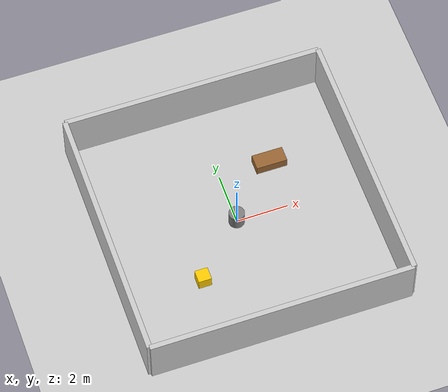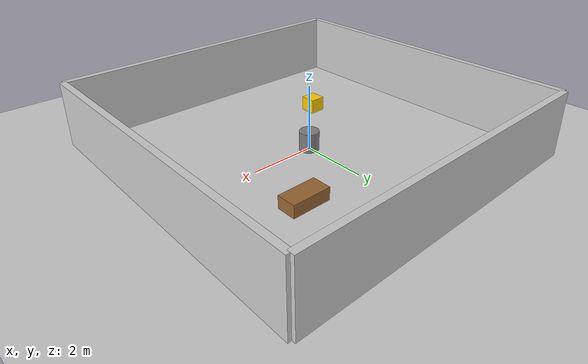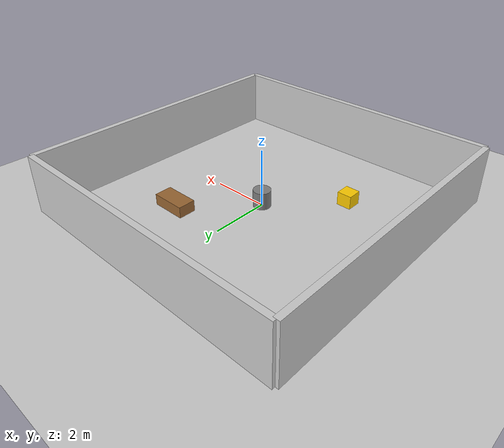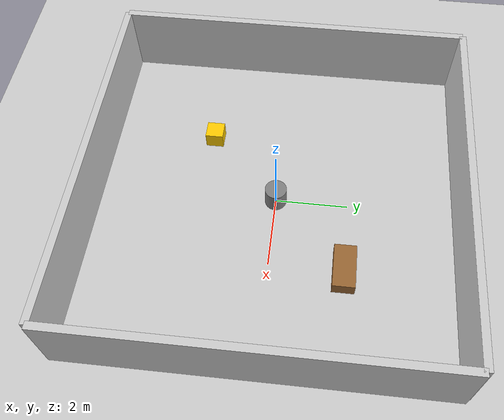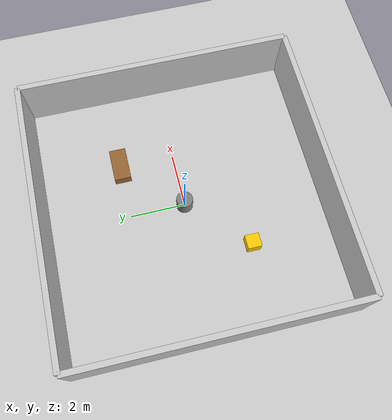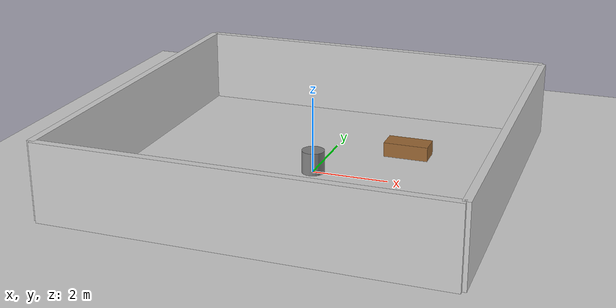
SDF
<?xml version="1.0" ?>
<sdf version="1.6">
  <world name="indoor_scene">

    <!-- Physics -->
    <physics type="ode">
      <max_step_size>0.001</max_step_size>
      <real_time_factor>1.0</real_time_factor>
      <real_time_update_rate>1000</real_time_update_rate>
      <gravity>0 0 -9.81</gravity>
    </physics>

    <!-- Lighting -->
    <include>
      <uri>model://sun</uri>
    </include>

    <!-- Ground Plane -->
    <include>
      <uri>model://ground_plane</uri>
    </include>

    <!-- Indoor Room -->
    <!-- Walls -->
    <model name="wall_north">
      <static>true</static>
      <pose>5 0 1 0 0 0</pose>
      <link name="link">
        <collision name="collision">
          <geometry>
            <box><size>0.2 10 2</size></box>
          </geometry>
        </collision>
        <visual name="visual">
          <geometry>
            <box><size>0.2 10 2</size></box>
          </geometry>
          <material>
            <ambient>0.8 0.8 0.8 1</ambient>
            <diffuse>0.8 0.8 0.8 1</diffuse>
          </material>
        </visual>
      </link>
    </model>

    <model name="wall_south">
      <static>true</static>
      <pose>-5 0 1 0 0 0</pose>
      <link name="link">
        <collision name="collision">
          <geometry>
            <box><size>0.2 10 2</size></box>
          </geometry>
        </collision>
        <visual name="visual">
          <geometry>
            <box><size>0.2 10 2</size></box>
          </geometry>
          <material>
            <ambient>0.8 0.8 0.8 1</ambient>
            <diffuse>0.8 0.8 0.8 1</diffuse>
          </material>
        </visual>
      </link>
    </model>

    <model name="wall_east">
      <static>true</static>
      <pose>0 5 1 0 0 0</pose>
      <link name="link">
        <collision name="collision">
          <geometry>
            <box><size>10 0.2 2</size></box>
          </geometry>
        </collision>
        <visual name="visual">
          <geometry>
            <box><size>10 0.2 2</size></box>
          </geometry>
          <material>
            <ambient>0.8 0.8 0.8 1</ambient>
            <diffuse>0.8 0.8 0.8 1</diffuse>
          </material>
        </visual>
      </link>
    </model>

    <model name="wall_west">
      <static>true</static>
      <pose>0 -5 1 0 0 0</pose>
      <link name="link">
        <collision name="collision">
          <geometry>
            <box><size>10 0.2 2</size></box>
          </geometry>
        </collision>
        <visual name="visual">
          <geometry>
            <box><size>10 0.2 2</size></box>
          </geometry>
          <material>
            <ambient>0.8 0.8 0.8 1</ambient>
            <diffuse>0.8 0.8 0.8 1</diffuse>
          </material>
        </visual>
      </link>
    </model>

    <!-- Furniture - Tables -->
    <model name="table_1">
      <static>true</static>
      <pose>2 2 0 0 0 0</pose>
      <link name="link">
        <collision name="collision">
          <geometry>
            <box><size>1.2 0.6 0.75</size></box>
          </geometry>
        </collision>
        <visual name="visual">
          <geometry>
            <box><size>1.2 0.6 0.75</size></box>
          </geometry>
          <material>
            <ambient>0.6 0.4 0.2 1</ambient>
            <diffuse>0.6 0.4 0.2 1</diffuse>
          </material>
        </visual>
      </link>
    </model>

    <!-- Furniture - Chairs -->
    <model name="chair_1">
      <static>true</static>
      <pose>-2 -2 0 0 0 0</pose>
      <link name="link">
        <collision name="collision">
          <geometry>
            <box><size>0.5 0.5 0.9</size></box>
          </geometry>
        </collision>
        <visual name="visual">
          <geometry>
            <box><size>0.5 0.5 0.9</size></box>
          </geometry>
          <material>
            <ambient>1.0 0.8 0.0 1</ambient>
            <diffuse>1.0 0.8 0.0 1</diffuse>
          </material>
        </visual>
      </link>
    </model>

    <!-- Obstacles - Random objects -->
    <model name="obstacle_1">
      <static>true</static>
      <pose>0 0 0.3 0 0 0</pose>
      <link name="link">
        <collision name="collision">
          <geometry>
            <cylinder><radius>0.3</radius><length>0.6</length></cylinder>
          </geometry>
        </collision>
        <visual name="visual">
          <geometry>
            <cylinder><radius>0.3</radius><length>0.6</length></cylinder>
          </geometry>
          <material>
            <ambient>0.5 0.5 0.5 1</ambient>
            <diffuse>0.5 0.5 0.5 1</diffuse>
          </material>
        </visual>
      </link>
    </model>

    <!-- Camera -->
    <gui>
      <camera name="user_camera">
        <pose>-8 -8 8 0 0.5 0.785</pose>
      </camera>
    </gui>

  </world>
</sdf>
